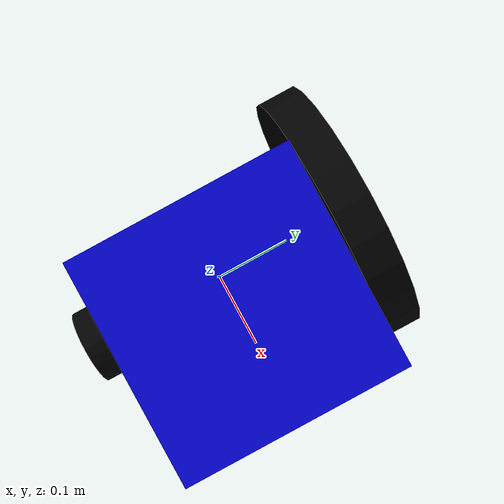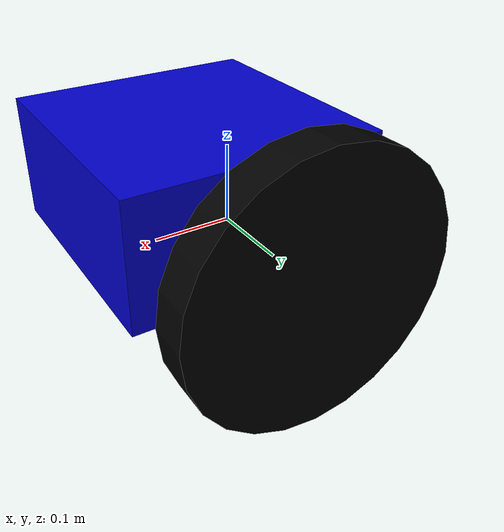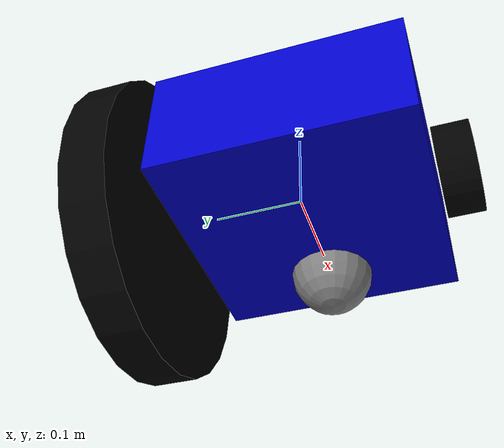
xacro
<?xml version="1.0"?>
<robot xmlns:xacro="http://www.ros.org/wiki/xacro" name="ros_robot_one">

<xacro:include filename="inertial_macros.xacro"/>

      <material name="blue">
        <color rgba="0 0 0.8 1"/>
      </material>
        <material name="black">
            <color rgba="0 0 0 1"/>
        </material>

        <material name="grey">
            <color rgba="0.5 0.5 0.5 1"/>
        </material>

        <material name="red">
            <color rgba="0.8 0 0 1"/>
        </material>

        <material name="green">
            <color rgba="0 0.8 0 1"/>
        </material>

        <material name="yellow">
            <color rgba="0.8 0.8 0 1"/>
        </material>

    <!-- Base Link -->

    <link name="base_link">

    </link>

    <joint name="chassis_joint" type="fixed">
        <parent link="base_link"/>
        <child link="chassis"/>
        <origin xyz="-0.1 0 0"/>
    </joint>

    <!-- Chassis -->

    <link name="chassis">
        <visual>
            <origin xyz="0.15 0 0.075"/>
            <geometry>
                <box size="0.3 0.3 0.15"/>
            </geometry>
            <material name="blue"/>
        </visual>

        <collision>
            <origin xyz="0.15 0 0.075"/>
            <geometry>
                <box size="0.3 0.3 0.15"/>
            </geometry>
        </collision>
            <xacro:inertial_box mass="0.5" x="0.3" y="0.3" z="0.15">
            <origin xyz="0.15 0 0.075" rpy="0 0 0"/>
            </xacro:inertial_box>
   </link>

<xacro:property name="pi" value="3.1415926535897931" />

    <!-- Left Wheel Link -->

    <joint name="left_wheel_joint" type="continuous">
        <parent link="base_link"/>
        <child link="left_wheel"/>
        <origin xyz="0 0.175 0" rpy="${pi/2} 0 0"/>
        <axis xyz=" 0 0 1"/>
    </joint>

    <link name="left_wheel">
        <visual>
            <geometry>
                <cylinder radius="0.175" length="0.05"/>
            </geometry>
            <material name="black"/>
        </visual>

        <collision>
            <geometry>
                <cylinder radius="0.05" length="0.04"/>
            </geometry>
        </collision>
            <xacro:inertial_cylinder mass="0.1" length="0.04" radius="0.05">
            <origin xyz="0 0 0" rpy="0 0 0"/>
            </xacro:inertial_cylinder>
    </link>

    <!-- Right Wheel Link -->

    <joint name="right_wheel_joint" type="continuous">
        <parent link="base_link"/>
        <child link="right_wheel"/>
        <origin xyz="0 -0.175 0" rpy="${pi/2} 0 0"/>
        <axis xyz=" 0 0 -1"/>
    </joint>

    <link name="right_wheel">
        <visual>
            <geometry>
                <cylinder radius="0.05" length="0.04"/>
            </geometry>
            <material name="black"/>
        </visual>

        <collision>
            <geometry>
                <cylinder radius="0.075" length="0.05"/>
            </geometry>
        </collision>
            <xacro:inertial_cylinder mass="0.1" length="0.04" radius="0.05">
            <origin xyz="0 0 0" rpy="0 0 0"/>
            </xacro:inertial_cylinder>
    </link>

<!--Caster Wheel Link-->

<joint name="caster_wheel_joint" type="fixed">
    <parent link="chassis"/>
    <child link="caster_wheel"/>
    <origin xyz="0.24 0 0"/>
    </joint>

    <link name ="caster_wheel">
        <visual>
            <geometry>
                <sphere radius="0.05"/>
            </geometry>
            <material name="grey"/>
        </visual>

        <collision>
            <geometry>
                <sphere radius="0.05"/>
            </geometry>
            <material name="grey"/>
        </collision>
    </link>
        <xacro:inertial_sphere mass="0.1" radius="0.05">
        <origin xyz="0 0 0" rpy="0 0 0"/>
        </xacro:inertial_sphere>
</robot>
